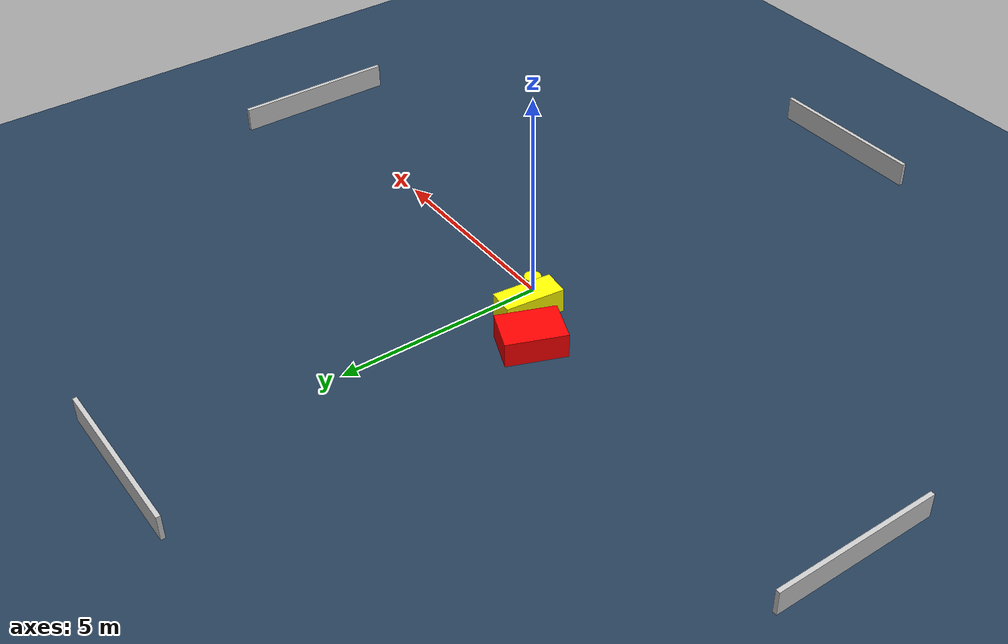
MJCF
<?xml version="1.0" ?>
<mujoco model="generated_environment">
  <option timestep="0.01" integrator="RK4" cone="elliptic"/>
  <default>
    <geom density="1"/>
  </default>
  <asset>
    <texture builtin="gradient" height="3072" name="skybox" rgb1="0.3 0.5 0.7" rgb2="0 0 0" type="skybox" width="512"/>
    <texture builtin="checker" height="300" name="groundplane" rgb1="0.2 0.3 0.4" rgb2="0.1 0.2 0.3" type="2d" width="300"/>
    <material name="groundplane" reflectance="0.2" texrepeat="5 5" texture="groundplane"/>
  </asset>
  <worldbody>
    <light dir="0 0 -1" directional="true" pos="0 0 1.5"/>
    <geom condim="3" friction="0.5 0.005 0.001" material="groundplane" name="floor" pos="0 0 0" size="0 0 0.05" type="plane"/>
    <body name="walls">
      <geom name="wall_1" condim="4" pos="-10.0 0.0 0.3" rgba="0.800000011920929 0.800000011920929 0.800000011920929 1.0" size="0.05 2.0 0.3" type="box"/>
      <geom name="wall_2" condim="4" pos="10.0 0.0 0.3" rgba="0.800000011920929 0.800000011920929 0.800000011920929 1.0" size="0.05 2.0 0.3" type="box"/>
      <geom name="wall_3" condim="4" pos="0.0 -10.0 0.3" rgba="0.800000011920929 0.800000011920929 0.800000011920929 1.0" size="2.0 0.05 0.3" type="box"/>
      <geom name="wall_4" condim="4" pos="0.0 10.0 0.3" rgba="0.800000011920929 0.800000011920929 0.800000011920929 1.0" size="2.0 0.05 0.3" type="box"/>
    </body>
    <body name="robot">
      <joint name="joint_x" type="slide" pos="0 0 0" axis="1 0 0"/>
      <joint name="joint_y" type="slide" pos="0 0 0" axis="0 1 0"/>
      <geom name="robot" type="cylinder" pos="0.0 0.0 0.2" size="0.2 0.2 0.0" mass="5.0" friction="1.0 0.005 0.0001" condim="4" rgba="1.0 1.0 0.0 1.0"/>
    </body>
    <body name="obstacle_1_movable">
      <geom name="obstacle_1_movable" condim="4" pos="-0.6152272563081357 0.5663197340264261 0.3" euler="0 0 353.73452328416937" friction="0.0 0.005 0.001" rgba="1.0 1.0 0.0 1.0" size="0.32174917961338323 0.7206829988102579 0.3" type="box" mass="0.1"/>
      <joint type="free"/>
    </body>
    <body name="obstacle_2_static">
      <geom name="obstacle_2_static" condim="4" pos="-1.5802847260148938 1.1942296548471294 0.3" euler="0 0 338.0078652886417" friction="0.0 0.005 0.001" rgba="1.0 0.0 0.0 1.0" size="0.5197718955395423 0.7123611935093577 0.3" type="box"/>
    </body>
  </worldbody>
  <actuator>
    <motor name="actuator_x" joint="joint_x" gear="1" ctrlrange="-1 1"/>
    <motor name="actuator_y" joint="joint_y" gear="1" ctrlrange="-1 1"/>
  </actuator>
</mujoco>
